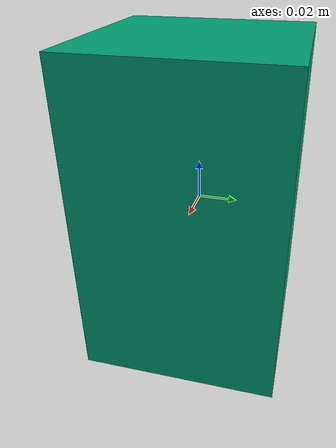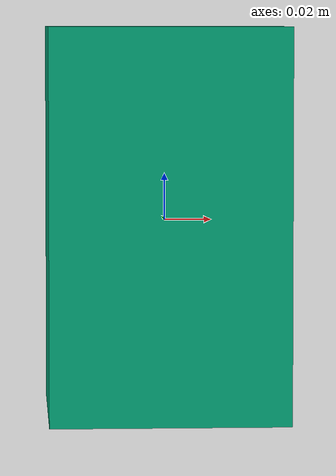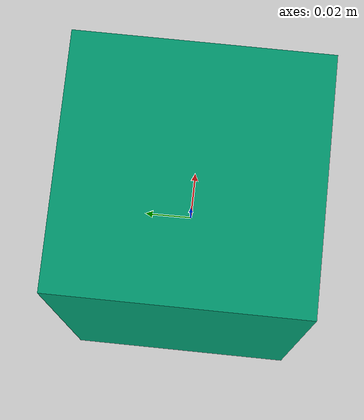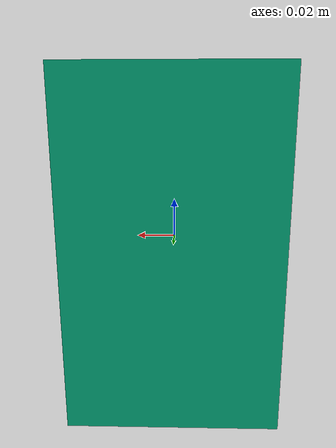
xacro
<?xml version="1.0"?>
<robot xmlns:xacro="http://www.ros.org/wiki/xacro">

    <!-- BASE FOOTPRINT -->

    <link name="base_footprint"/>

    <!-- BASE LINK -->

    <joint name="base_footprint_joint" type="fixed">
        <parent link="base_footprint"/>
        <child link="base_link"/>
        <origin xyz="0 0 0"/>
    </joint>

    <link name="base_link"/>

    <!-- CHASSIS LINK -->

    <joint name="chassis_joint" type="fixed">
        <parent link="base_link"/>
        <child link="chassis"/>
        <origin xyz="0 0 0"/>
    </joint>

    <link name="chassis">
        <visual>
            <origin xyz="0 0 0"/>
            <geometry>
                <box size="0.101 0.101 0.166"/>
            </geometry>
        </visual>
        <collision>
            <origin xyz="0 0 0"/>
            <geometry>
                <box size="0.101 0.101 0.166"/>
            </geometry>
        </collision>
        <xacro:inertial_box mass="0.42" x="0.101" y="0.101" z="0.166">
            <origin xyz="0 0 0" rpy="0 0 0"/>
        </xacro:inertial_box>
    </link>

</robot>
